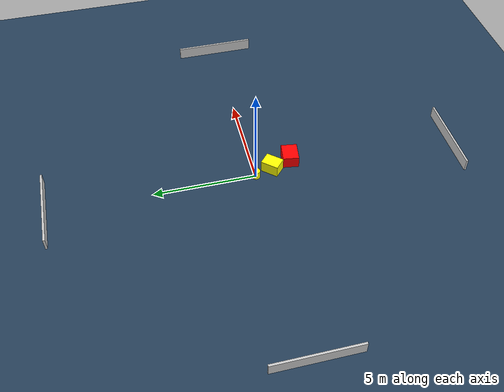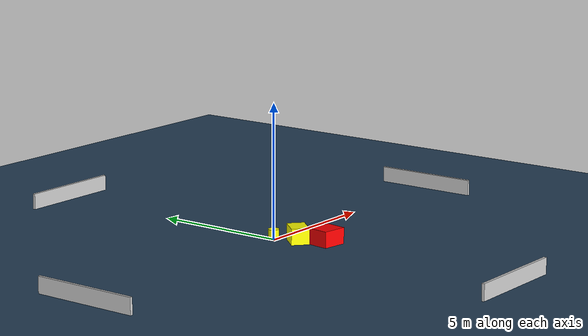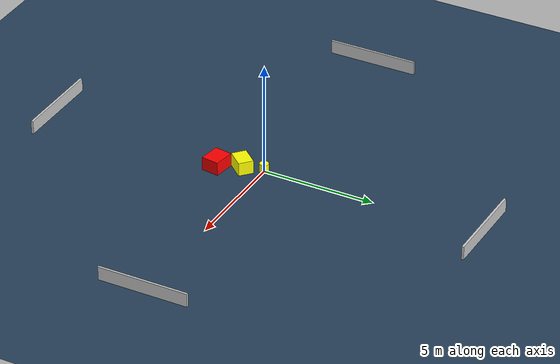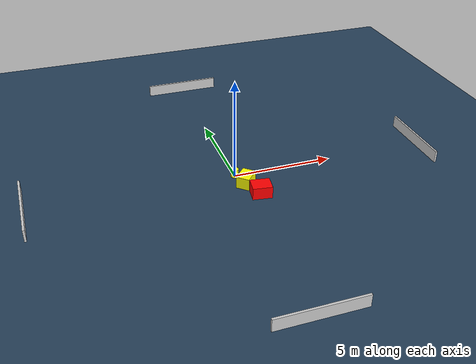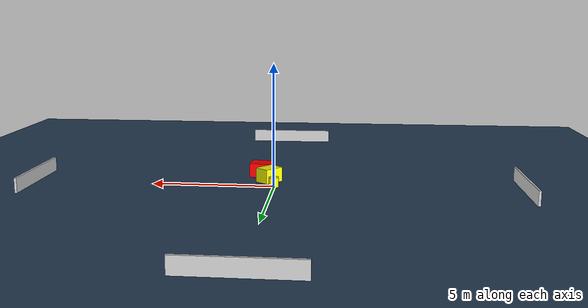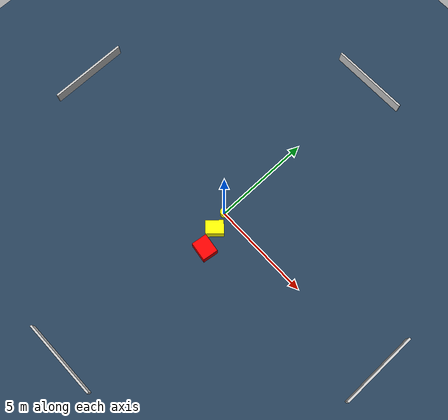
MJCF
<?xml version="1.0" ?>
<mujoco model="generated_environment">
  <option timestep="0.01" integrator="RK4" cone="elliptic"/>
  <default>
    <geom density="1"/>
  </default>
  <asset>
    <texture builtin="gradient" height="3072" name="skybox" rgb1="0.3 0.5 0.7" rgb2="0 0 0" type="skybox" width="512"/>
    <texture builtin="checker" height="300" name="groundplane" rgb1="0.2 0.3 0.4" rgb2="0.1 0.2 0.3" type="2d" width="300"/>
    <material name="groundplane" reflectance="0.2" texrepeat="5 5" texture="groundplane"/>
  </asset>
  <worldbody>
    <light dir="0 0 -1" directional="true" pos="0 0 1.5"/>
    <geom condim="3" friction="0.5 0.005 0.001" material="groundplane" name="floor" pos="0 0 0" size="0 0 0.05" type="plane"/>
    <body name="walls">
      <geom name="wall_1" condim="4" pos="-10.0 0.0 0.3" rgba="0.800000011920929 0.800000011920929 0.800000011920929 1.0" size="0.05 2.0 0.3" type="box"/>
      <geom name="wall_2" condim="4" pos="10.0 0.0 0.3" rgba="0.800000011920929 0.800000011920929 0.800000011920929 1.0" size="0.05 2.0 0.3" type="box"/>
      <geom name="wall_3" condim="4" pos="0.0 -10.0 0.3" rgba="0.800000011920929 0.800000011920929 0.800000011920929 1.0" size="2.0 0.05 0.3" type="box"/>
      <geom name="wall_4" condim="4" pos="0.0 10.0 0.3" rgba="0.800000011920929 0.800000011920929 0.800000011920929 1.0" size="2.0 0.05 0.3" type="box"/>
    </body>
    <body name="robot">
      <joint name="joint_x" type="slide" pos="0 0 0" axis="1 0 0"/>
      <joint name="joint_y" type="slide" pos="0 0 0" axis="0 1 0"/>
      <geom name="robot" type="cylinder" pos="0.0 0.0 0.2" size="0.2 0.2 0.0" mass="5.0" friction="1.0 0.005 0.0001" condim="4" rgba="1.0 1.0 0.0 1.0"/>
    </body>
    <body name="obstacle_1_movable">
      <geom name="obstacle_1_movable" condim="4" pos="0.27720272435406423 -0.8755812905302709 0.3" euler="0 0 318.5941796278674" friction="0.0 0.005 0.001" rgba="1.0 1.0 0.0 1.0" size="0.32927523734957476 0.4375553912569942 0.3" type="box" mass="0.1"/>
      <joint type="free"/>
    </body>
    <body name="obstacle_2_static">
      <geom name="obstacle_2_static" condim="4" pos="0.6716313379593293 -1.8692079436945475 0.3" euler="0 0 351.909614019016" friction="0.0 0.005 0.001" rgba="1.0 0.0 0.0 1.0" size="0.4723570860348419 0.391162254298401 0.3" type="box"/>
    </body>
  </worldbody>
  <actuator>
    <motor name="actuator_x" joint="joint_x" gear="1" ctrlrange="-1 1"/>
    <motor name="actuator_y" joint="joint_y" gear="1" ctrlrange="-1 1"/>
  </actuator>
</mujoco>
